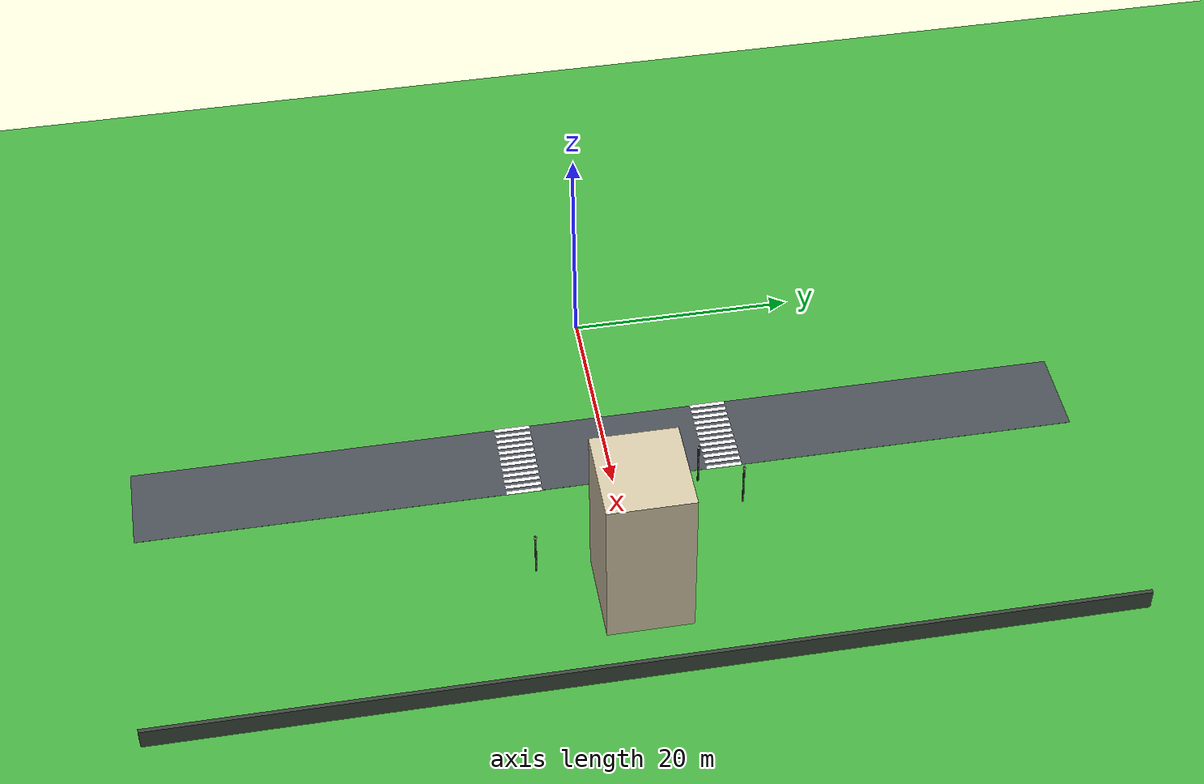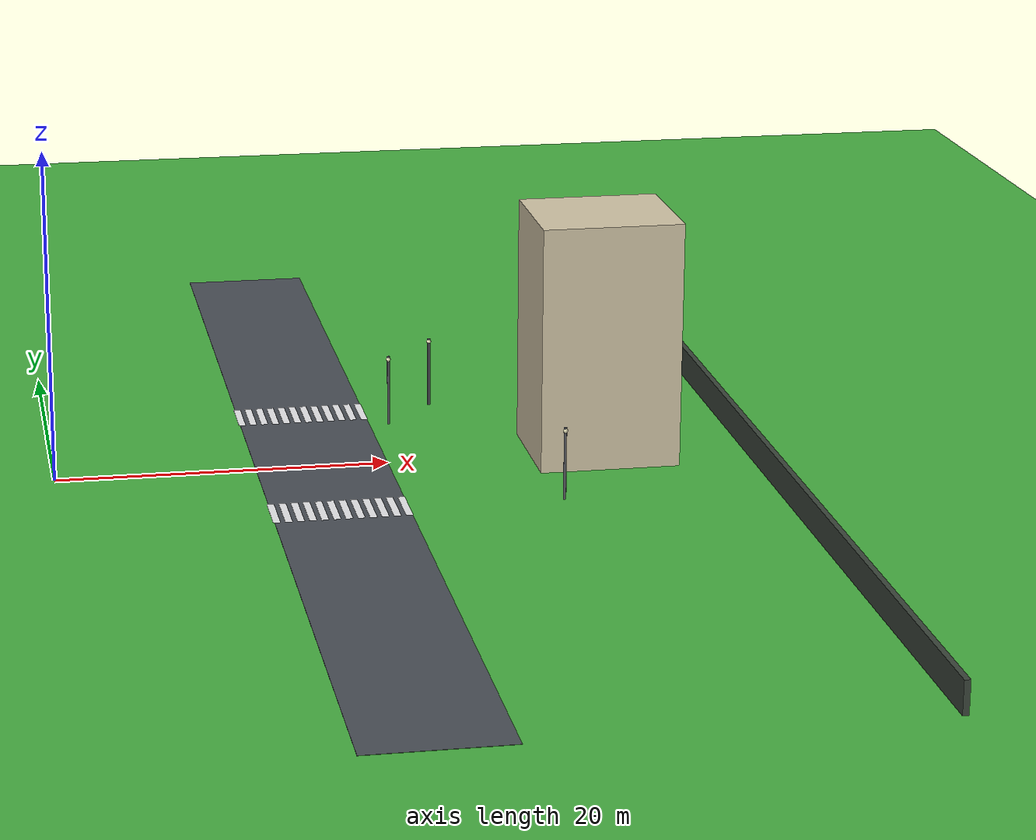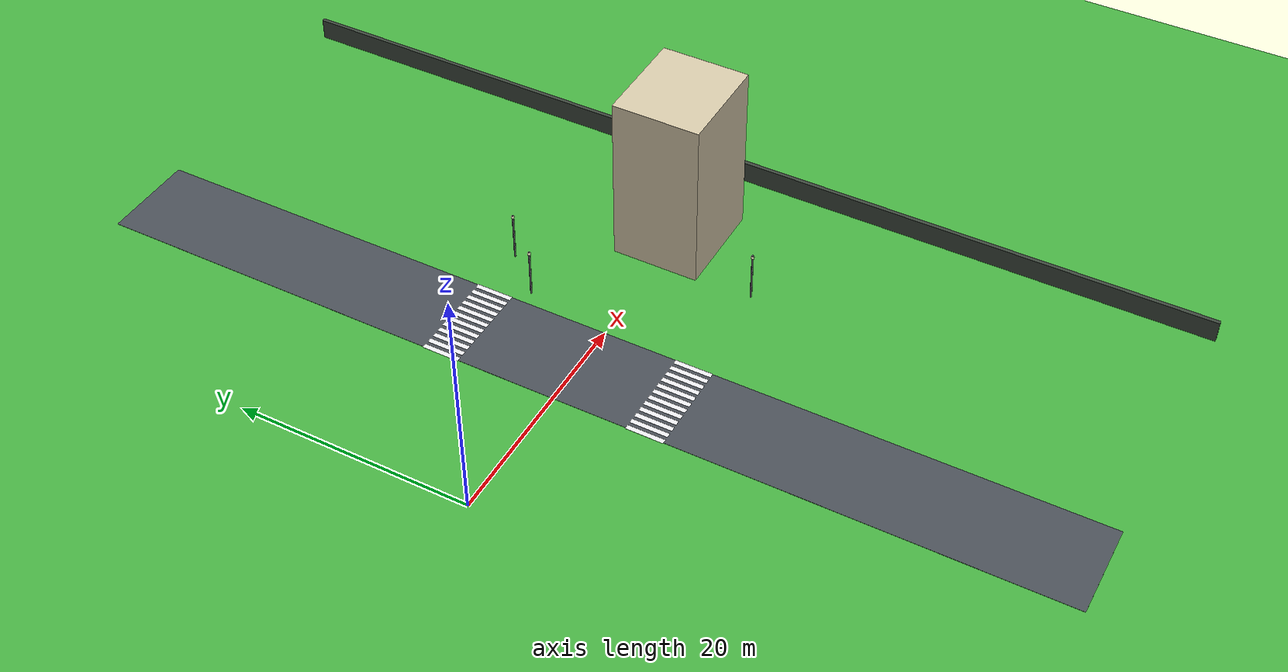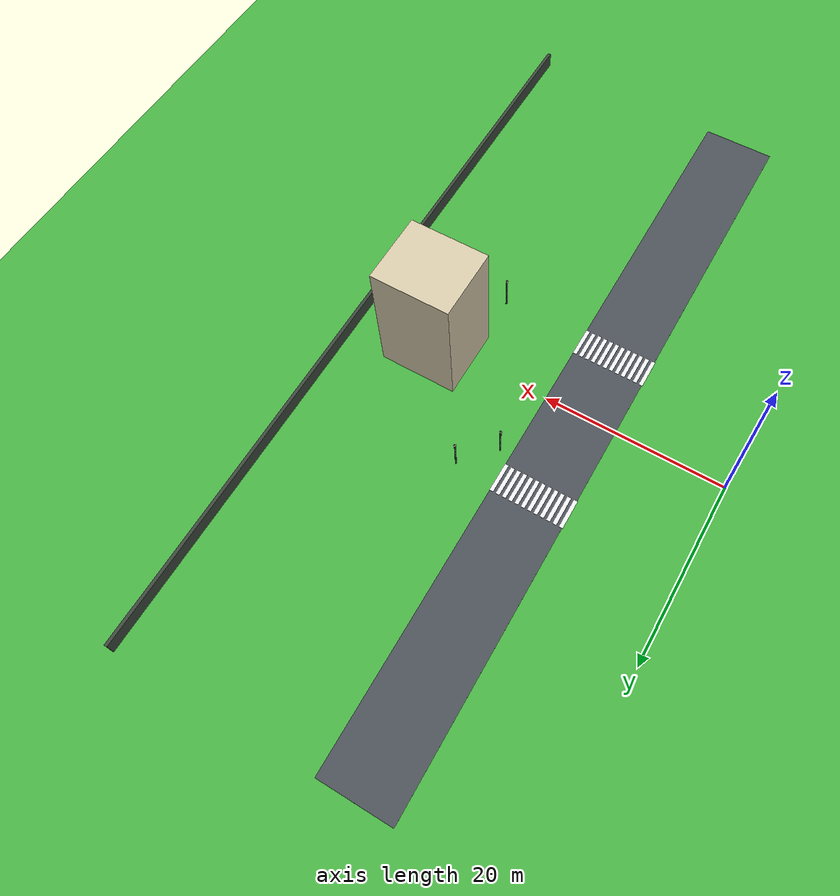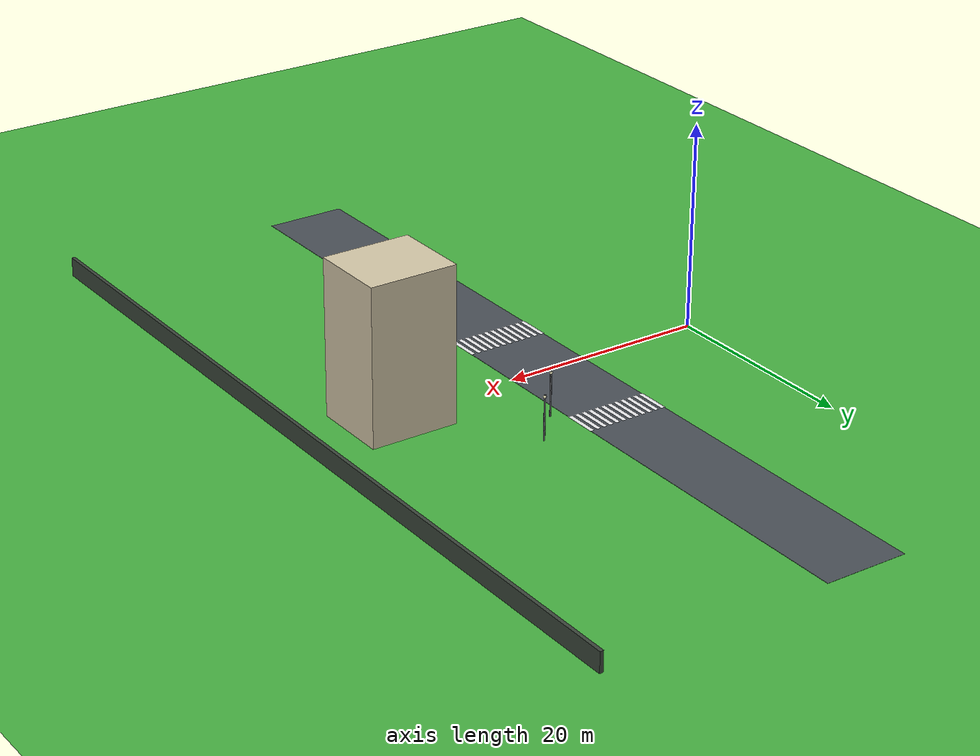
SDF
<sdf version="1.10">
 <world name="city_second">
  <model name="ground_plane">
   <static>true</static>
   <link name="link">
    <collision name="collision">
     <geometry><plane><normal>0 0 1</normal><size>300 300</size></plane></geometry>
    </collision>
    <visual name="visual">
     <geometry><plane><normal>0 0 1</normal><size>300 300</size></plane></geometry>
     <material>
      <ambient>0.280000001 0.689999998 0.25999999 1</ambient>
      <diffuse>0.280000001 0.689999998 0.25999999 1</diffuse>
      <specular>0.0299999993 0.0299999993 0.0299999993 1</specular>
     </material>
    </visual>
    <inertial>
     <mass>1</mass>
     <inertia><ixx>1</ixx><ixy>0</ixy><ixz>0</ixz><iyy>1</iyy><iyz>0</iyz><izz>1</izz></inertia>
    </inertial>
   </link>
  </model>
  <model name="road_v_2">
   <static>true</static>
   <pose>16 0 0.01 0 0 0</pose>
   <link name="link">
    <collision name="collision"><geometry><box><size>8 84 0.02</size></box></geometry></collision>
    <visual name="visual">
     <geometry><box><size>8 84 0.02</size></box></geometry>
     <material>
      <ambient>0.289999992 0.310000002 0.340000004 1</ambient>
      <diffuse>0.289999992 0.310000002 0.340000004 1</diffuse>
      <specular>0.0299999993 0.0299999993 0.0299999993 1</specular>
     </material>
    </visual>
    <inertial>
     <mass>1</mass>
     <inertia><ixx>1</ixx><ixy>0</ixy><ixz>0</ixz><iyy>1</iyy><iyz>0</iyz><izz>1</izz></inertia>
    </inertial>
   </link>
  </model>
  <model name="fence_east">
   <static>true</static>
   <pose>42 0 0.94999999999999996 0 0 0</pose>
   <link name="link">
    <collision name="collision">
     <geometry><box><size>0.34999999999999998 84.5 1.8999999999999999</size></box></geometry>
    </collision>
    <visual name="visual">
     <geometry><box><size>0.34999999999999998 84.5 1.8999999999999999</size></box></geometry>
     <material>
      <ambient>0.230000004 0.270000011 0.230000004 1</ambient>
      <diffuse>0.230000004 0.270000011 0.230000004 1</diffuse>
      <specular>0.0299999993 0.0299999993 0.0299999993 1</specular>
     </material>
    </visual>
    <inertial>
     <mass>1</mass>
     <inertia><ixx>1</ixx><ixy>0</ixy><ixz>0</ixz><iyy>1</iyy><iyz>0</iyz><izz>1</izz></inertia>
    </inertial>
   </link>
  </model>
  <model name="crosswalk_h_1_1_south_6">
   <static>true</static>
   <pose>15.980700000000001 10.0922 0.017000000000000001 0 0 0</pose>
   <link name="stripe_1">
    <collision name="collision">
     <geometry><box><size>0.41999999999999998 3.2000000000000002 0.01</size></box></geometry>
    </collision>
    <visual name="visual">
     <geometry><box><size>0.41999999999999998 3.2000000000000002 0.01</size></box></geometry>
     <material>
      <ambient>0.920000017 0.920000017 0.930000007 1</ambient>
      <diffuse>0.920000017 0.920000017 0.930000007 1</diffuse>
      <specular>0.0299999993 0.0299999993 0.0299999993 1</specular>
     </material>
    </visual>
    <pose>-3.8500000000000001 0 0 0 0 0</pose>
    <inertial>
     <mass>1</mass>
     <inertia><ixx>1</ixx><ixy>0</ixy><ixz>0</ixz><iyy>1</iyy><iyz>0</iyz><izz>1</izz></inertia>
    </inertial>
   </link>
   <link name="stripe_2">
    <collision name="collision">
     <geometry><box><size>0.41999999999999998 3.2000000000000002 0.01</size></box></geometry>
    </collision>
    <visual name="visual">
     <geometry><box><size>0.41999999999999998 3.2000000000000002 0.01</size></box></geometry>
     <material>
      <ambient>0.920000017 0.920000017 0.930000007 1</ambient>
      <diffuse>0.920000017 0.920000017 0.930000007 1</diffuse>
      <specular>0.0299999993 0.0299999993 0.0299999993 1</specular>
     </material>
    </visual>
    <pose>-3.1499999999999999 0 0 0 0 0</pose>
    <inertial>
     <mass>1</mass>
     <inertia><ixx>1</ixx><ixy>0</ixy><ixz>0</ixz><iyy>1</iyy><iyz>0</iyz><izz>1</izz></inertia>
    </inertial>
   </link>
   <link name="stripe_3">
    <collision name="collision">
     <geometry><box><size>0.41999999999999998 3.2000000000000002 0.01</size></box></geometry>
    </collision>
    <visual name="visual">
     <geometry><box><size>0.41999999999999998 3.2000000000000002 0.01</size></box></geometry>
     <material>
      <ambient>0.920000017 0.920000017 0.930000007 1</ambient>
      <diffuse>0.920000017 0.920000017 0.930000007 1</diffuse>
      <specular>0.0299999993 0.0299999993 0.0299999993 1</specular>
     </material>
    </visual>
    <pose>-2.4500000000000002 0 0 0 0 0</pose>
    <inertial>
     <mass>1</mass>
     <inertia><ixx>1</ixx><ixy>0</ixy><ixz>0</ixz><iyy>1</iyy><iyz>0</iyz><izz>1</izz></inertia>
    </inertial>
   </link>
   <link name="stripe_4">
    <collision name="collision">
     <geometry><box><size>0.41999999999999998 3.2000000000000002 0.01</size></box></geometry>
    </collision>
    <visual name="visual">
     <geometry><box><size>0.41999999999999998 3.2000000000000002 0.01</size></box></geometry>
     <material>
      <ambient>0.920000017 0.920000017 0.930000007 1</ambient>
      <diffuse>0.920000017 0.920000017 0.930000007 1</diffuse>
      <specular>0.0299999993 0.0299999993 0.0299999993 1</specular>
     </material>
    </visual>
    <pose>-1.75 0 0 0 0 0</pose>
    <inertial>
     <mass>1</mass>
     <inertia><ixx>1</ixx><ixy>0</ixy><ixz>0</ixz><iyy>1</iyy><iyz>0</iyz><izz>1</izz></inertia>
    </inertial>
   </link>
   <link name="stripe_5">
    <collision name="collision">
     <geometry><box><size>0.41999999999999998 3.2000000000000002 0.01</size></box></geometry>
    </collision>
    <visual name="visual">
     <geometry><box><size>0.41999999999999998 3.2000000000000002 0.01</size></box></geometry>
     <material>
      <ambient>0.920000017 0.920000017 0.930000007 1</ambient>
      <diffuse>0.920000017 0.920000017 0.930000007 1</diffuse>
      <specular>0.0299999993 0.0299999993 0.0299999993 1</specular>
     </material>
    </visual>
    <pose>-1.05 0 0 0 0 0</pose>
    <inertial>
     <mass>1</mass>
     <inertia><ixx>1</ixx><ixy>0</ixy><ixz>0</ixz><iyy>1</iyy><iyz>0</iyz><izz>1</izz></inertia>
    </inertial>
   </link>
   <link name="stripe_6">
    <collision name="collision">
     <geometry><box><size>0.41999999999999998 3.2000000000000002 0.01</size></box></geometry>
    </collision>
    <visual name="visual">
     <geometry><box><size>0.41999999999999998 3.2000000000000002 0.01</size></box></geometry>
     <material>
      <ambient>0.920000017 0.920000017 0.930000007 1</ambient>
      <diffuse>0.920000017 0.920000017 0.930000007 1</diffuse>
      <specular>0.0299999993 0.0299999993 0.0299999993 1</specular>
     </material>
    </visual>
    <pose>-0.34999999999999998 0 0 0 0 0</pose>
    <inertial>
     <mass>1</mass>
     <inertia><ixx>1</ixx><ixy>0</ixy><ixz>0</ixz><iyy>1</iyy><iyz>0</iyz><izz>1</izz></inertia>
    </inertial>
   </link>
   <link name="stripe_7">
    <collision name="collision">
     <geometry><box><size>0.41999999999999998 3.2000000000000002 0.01</size></box></geometry>
    </collision>
    <visual name="visual">
     <geometry><box><size>0.41999999999999998 3.2000000000000002 0.01</size></box></geometry>
     <material>
      <ambient>0.920000017 0.920000017 0.930000007 1</ambient>
      <diffuse>0.920000017 0.920000017 0.930000007 1</diffuse>
      <specular>0.0299999993 0.0299999993 0.0299999993 1</specular>
     </material>
    </visual>
    <pose>0.34999999999999998 0 0 0 0 0</pose>
    <inertial>
     <mass>1</mass>
     <inertia><ixx>1</ixx><ixy>0</ixy><ixz>0</ixz><iyy>1</iyy><iyz>0</iyz><izz>1</izz></inertia>
    </inertial>
   </link>
   <link name="stripe_8">
    <collision name="collision">
     <geometry><box><size>0.41999999999999998 3.2000000000000002 0.01</size></box></geometry>
    </collision>
    <visual name="visual">
     <geometry><box><size>0.41999999999999998 3.2000000000000002 0.01</size></box></geometry>
     <material>
      <ambient>0.920000017 0.920000017 0.930000007 1</ambient>
      <diffuse>0.920000017 0.920000017 0.930000007 1</diffuse>
      <specular>0.0299999993 0.0299999993 0.0299999993 1</specular>
     </material>
    </visual>
    <pose>1.05 0 0 0 0 0</pose>
    <inertial>
     <mass>1</mass>
     <inertia><ixx>1</ixx><ixy>0</ixy><ixz>0</ixz><iyy>1</iyy><iyz>0</iyz><izz>1</izz></inertia>
    </inertial>
   </link>
   <link name="stripe_9">
    <collision name="collision">
     <geometry><box><size>0.41999999999999998 3.2000000000000002 0.01</size></box></geometry>
    </collision>
    <visual name="visual">
     <geometry><box><size>0.41999999999999998 3.2000000000000002 0.01</size></box></geometry>
     <material>
      <ambient>0.920000017 0.920000017 0.930000007 1</ambient>
      <diffuse>0.920000017 0.920000017 0.930000007 1</diffuse>
      <specular>0.0299999993 0.0299999993 0.0299999993 1</specular>
     </material>
    </visual>
    <pose>1.75 0 0 0 0 0</pose>
    <inertial>
     <mass>1</mass>
     <inertia><ixx>1</ixx><ixy>0</ixy><ixz>0</ixz><iyy>1</iyy><iyz>0</iyz><izz>1</izz></inertia>
    </inertial>
   </link>
   <link name="stripe_10">
    <collision name="collision">
     <geometry><box><size>0.41999999999999998 3.2000000000000002 0.01</size></box></geometry>
    </collision>
    <visual name="visual">
     <geometry><box><size>0.41999999999999998 3.2000000000000002 0.01</size></box></geometry>
     <material>
      <ambient>0.920000017 0.920000017 0.930000007 1</ambient>
      <diffuse>0.920000017 0.920000017 0.930000007 1</diffuse>
      <specular>0.0299999993 0.0299999993 0.0299999993 1</specular>
     </material>
    </visual>
    <pose>2.4500000000000002 0 0 0 0 0</pose>
    <inertial>
     <mass>1</mass>
     <inertia><ixx>1</ixx><ixy>0</ixy><ixz>0</ixz><iyy>1</iyy><iyz>0</iyz><izz>1</izz></inertia>
    </inertial>
   </link>
   <link name="stripe_11">
    <collision name="collision">
     <geometry><box><size>0.41999999999999998 3.2000000000000002 0.01</size></box></geometry>
    </collision>
    <visual name="visual">
     <geometry><box><size>0.41999999999999998 3.2000000000000002 0.01</size></box></geometry>
     <material>
      <ambient>0.920000017 0.920000017 0.930000007 1</ambient>
      <diffuse>0.920000017 0.920000017 0.930000007 1</diffuse>
      <specular>0.0299999993 0.0299999993 0.0299999993 1</specular>
     </material>
    </visual>
    <pose>3.1499999999999999 0 0 0 0 0</pose>
    <inertial>
     <mass>1</mass>
     <inertia><ixx>1</ixx><ixy>0</ixy><ixz>0</ixz><iyy>1</iyy><iyz>0</iyz><izz>1</izz></inertia>
    </inertial>
   </link>
   <link name="stripe_12">
    <collision name="collision">
     <geometry><box><size>0.41999999999999998 3.2000000000000002 0.01</size></box></geometry>
    </collision>
    <visual name="visual">
     <geometry><box><size>0.41999999999999998 3.2000000000000002 0.01</size></box></geometry>
     <material>
      <ambient>0.920000017 0.920000017 0.930000007 1</ambient>
      <diffuse>0.920000017 0.920000017 0.930000007 1</diffuse>
      <specular>0.0299999993 0.0299999993 0.0299999993 1</specular>
     </material>
    </visual>
    <pose>3.8500000000000001 0 0 0 0 0</pose>
    <inertial>
     <mass>1</mass>
     <inertia><ixx>1</ixx><ixy>0</ixy><ixz>0</ixz><iyy>1</iyy><iyz>0</iyz><izz>1</izz></inertia>
    </inertial>
   </link>
  </model>
  <model name="house_2_3_1">
   <static>true</static>
   <pose>32.993699999999997 0.30851699999999999 7.5 0 0 0</pose>
   <link name="link">
    <collision name="collision"><geometry><box><size>8.5 7.5 15</size></box></geometry></collision>
    <visual name="visual">
     <geometry><box><size>8.5 7.5 15</size></box></geometry>
     <material>
      <ambient>0.829999983 0.779999971 0.660000026 1</ambient>
      <diffuse>0.829999983 0.779999971 0.660000026 1</diffuse>
      <specular>0.0299999993 0.0299999993 0.0299999993 1</specular>
     </material>
    </visual>
    <inertial>
     <mass>1</mass>
     <inertia><ixx>1</ixx><ixy>0</ixy><ixz>0</ixz><iyy>1</iyy><iyz>0</iyz><izz>1</izz></inertia>
    </inertial>
   </link>
  </model>
  <model name="crosswalk_h_1_1_south_7_1">
   <static>true</static>
   <pose>15.9758 -7.8596300000000001 0.017000000000000001 0 0 0</pose>
   <link name="stripe_1">
    <collision name="collision">
     <geometry><box><size>0.41999999999999998 3.2000000000000002 0.01</size></box></geometry>
    </collision>
    <visual name="visual">
     <geometry><box><size>0.41999999999999998 3.2000000000000002 0.01</size></box></geometry>
     <material>
      <ambient>0.920000017 0.920000017 0.930000007 1</ambient>
      <diffuse>0.920000017 0.920000017 0.930000007 1</diffuse>
      <specular>0.0299999993 0.0299999993 0.0299999993 1</specular>
     </material>
    </visual>
    <pose>-3.8500000000000001 0 0 0 0 0</pose>
    <inertial>
     <mass>1</mass>
     <inertia><ixx>1</ixx><ixy>0</ixy><ixz>0</ixz><iyy>1</iyy><iyz>0</iyz><izz>1</izz></inertia>
    </inertial>
   </link>
   <link name="stripe_2">
    <collision name="collision">
     <geometry><box><size>0.41999999999999998 3.2000000000000002 0.01</size></box></geometry>
    </collision>
    <visual name="visual">
     <geometry><box><size>0.41999999999999998 3.2000000000000002 0.01</size></box></geometry>
     <material>
      <ambient>0.920000017 0.920000017 0.930000007 1</ambient>
      <diffuse>0.920000017 0.920000017 0.930000007 1</diffuse>
      <specular>0.0299999993 0.0299999993 0.0299999993 1</specular>
     </material>
    </visual>
    <pose>-3.1499999999999999 0 0 0 0 0</pose>
    <inertial>
     <mass>1</mass>
     <inertia><ixx>1</ixx><ixy>0</ixy><ixz>0</ixz><iyy>1</iyy><iyz>0</iyz><izz>1</izz></inertia>
    </inertial>
   </link>
   <link name="stripe_3">
    <collision name="collision">
     <geometry><box><size>0.41999999999999998 3.2000000000000002 0.01</size></box></geometry>
    </collision>
    <visual name="visual">
     <geometry><box><size>0.41999999999999998 3.2000000000000002 0.01</size></box></geometry>
     <material>
      <ambient>0.920000017 0.920000017 0.930000007 1</ambient>
      <diffuse>0.920000017 0.920000017 0.930000007 1</diffuse>
      <specular>0.0299999993 0.0299999993 0.0299999993 1</specular>
     </material>
    </visual>
    <pose>-2.4500000000000002 0 0 0 0 0</pose>
    <inertial>
     <mass>1</mass>
     <inertia><ixx>1</ixx><ixy>0</ixy><ixz>0</ixz><iyy>1</iyy><iyz>0</iyz><izz>1</izz></inertia>
    </inertial>
   </link>
   <link name="stripe_4">
    <collision name="collision">
     <geometry><box><size>0.41999999999999998 3.2000000000000002 0.01</size></box></geometry>
    </collision>
    <visual name="visual">
     <geometry><box><size>0.41999999999999998 3.2000000000000002 0.01</size></box></geometry>
     <material>
      <ambient>0.920000017 0.920000017 0.930000007 1</ambient>
      <diffuse>0.920000017 0.920000017 0.930000007 1</diffuse>
      <specular>0.0299999993 0.0299999993 0.0299999993 1</specular>
     </material>
    </visual>
    <pose>-1.75 0 0 0 0 0</pose>
    <inertial>
     <mass>1</mass>
     <inertia><ixx>1</ixx><ixy>0</ixy><ixz>0</ixz><iyy>1</iyy><iyz>0</iyz><izz>1</izz></inertia>
    </inertial>
   </link>
   <link name="stripe_5">
    <collision name="collision">
     <geometry><box><size>0.41999999999999998 3.2000000000000002 0.01</size></box></geometry>
    </collision>
    <visual name="visual">
     <geometry><box><size>0.41999999999999998 3.2000000000000002 0.01</size></box></geometry>
     <material>
      <ambient>0.920000017 0.920000017 0.930000007 1</ambient>
      <diffuse>0.920000017 0.920000017 0.930000007 1</diffuse>
      <specular>0.0299999993 0.0299999993 0.0299999993 1</specular>
     </material>
    </visual>
    <pose>-1.05 0 0 0 0 0</pose>
    <inertial>
     <mass>1</mass>
     <inertia><ixx>1</ixx><ixy>0</ixy><ixz>0</ixz><iyy>1</iyy><iyz>0</iyz><izz>1</izz></inertia>
    </inertial>
   </link>
   <link name="stripe_6">
    <collision name="collision">
     <geometry><box><size>0.41999999999999998 3.2000000000000002 0.01</size></box></geometry>
    </collision>
    <visual name="visual">
     <geometry><box><size>0.41999999999999998 3.2000000000000002 0.01</size></box></geometry>
     <material>
      <ambient>0.920000017 0.920000017 0.930000007 1</ambient>
      <diffuse>0.920000017 0.920000017 0.930000007 1</diffuse>
      <specular>0.0299999993 0.0299999993 0.0299999993 1</specular>
     </material>
    </visual>
    <pose>-0.34999999999999998 0 0 0 0 0</pose>
    <inertial>
     <mass>1</mass>
     <inertia><ixx>1</ixx><ixy>0</ixy><ixz>0</ixz><iyy>1</iyy><iyz>0</iyz><izz>1</izz></inertia>
    </inertial>
   </link>
   <link name="stripe_7">
    <collision name="collision">
     <geometry><box><size>0.41999999999999998 3.2000000000000002 0.01</size></box></geometry>
    </collision>
    <visual name="visual">
     <geometry><box><size>0.41999999999999998 3.2000000000000002 0.01</size></box></geometry>
     <material>
      <ambient>0.920000017 0.920000017 0.930000007 1</ambient>
      <diffuse>0.920000017 0.920000017 0.930000007 1</diffuse>
      <specular>0.0299999993 0.0299999993 0.0299999993 1</specular>
     </material>
    </visual>
    <pose>0.34999999999999998 0 0 0 0 0</pose>
    <inertial>
     <mass>1</mass>
     <inertia><ixx>1</ixx><ixy>0</ixy><ixz>0</ixz><iyy>1</iyy><iyz>0</iyz><izz>1</izz></inertia>
    </inertial>
   </link>
   <link name="stripe_8">
    <collision name="collision">
     <geometry><box><size>0.41999999999999998 3.2000000000000002 0.01</size></box></geometry>
    </collision>
    <visual name="visual">
     <geometry><box><size>0.41999999999999998 3.2000000000000002 0.01</size></box></geometry>
     <material>
      <ambient>0.920000017 0.920000017 0.930000007 1</ambient>
      <diffuse>0.920000017 0.920000017 0.930000007 1</diffuse>
      <specular>0.0299999993 0.0299999993 0.0299999993 1</specular>
     </material>
    </visual>
    <pose>1.05 0 0 0 0 0</pose>
    <inertial>
     <mass>1</mass>
     <inertia><ixx>1</ixx><ixy>0</ixy><ixz>0</ixz><iyy>1</iyy><iyz>0</iyz><izz>1</izz></inertia>
    </inertial>
   </link>
   <link name="stripe_9">
    <collision name="collision">
     <geometry><box><size>0.41999999999999998 3.2000000000000002 0.01</size></box></geometry>
    </collision>
    <visual name="visual">
     <geometry><box><size>0.41999999999999998 3.2000000000000002 0.01</size></box></geometry>
     <material>
      <ambient>0.920000017 0.920000017 0.930000007 1</ambient>
      <diffuse>0.920000017 0.920000017 0.930000007 1</diffuse>
      <specular>0.0299999993 0.0299999993 0.0299999993 1</specular>
     </material>
    </visual>
    <pose>1.75 0 0 0 0 0</pose>
    <inertial>
     <mass>1</mass>
     <inertia><ixx>1</ixx><ixy>0</ixy><ixz>0</ixz><iyy>1</iyy><iyz>0</iyz><izz>1</izz></inertia>
    </inertial>
   </link>
   <link name="stripe_10">
    <collision name="collision">
     <geometry><box><size>0.41999999999999998 3.2000000000000002 0.01</size></box></geometry>
    </collision>
    <visual name="visual">
     <geometry><box><size>0.41999999999999998 3.2000000000000002 0.01</size></box></geometry>
     <material>
      <ambient>0.920000017 0.920000017 0.930000007 1</ambient>
      <diffuse>0.920000017 0.920000017 0.930000007 1</diffuse>
      <specular>0.0299999993 0.0299999993 0.0299999993 1</specular>
     </material>
    </visual>
    <pose>2.4500000000000002 0 0 0 0 0</pose>
    <inertial>
     <mass>1</mass>
     <inertia><ixx>1</ixx><ixy>0</ixy><ixz>0</ixz><iyy>1</iyy><iyz>0</iyz><izz>1</izz></inertia>
    </inertial>
   </link>
   <link name="stripe_11">
    <collision name="collision">
     <geometry><box><size>0.41999999999999998 3.2000000000000002 0.01</size></box></geometry>
    </collision>
    <visual name="visual">
     <geometry><box><size>0.41999999999999998 3.2000000000000002 0.01</size></box></geometry>
     <material>
      <ambient>0.920000017 0.920000017 0.930000007 1</ambient>
      <diffuse>0.920000017 0.920000017 0.930000007 1</diffuse>
      <specular>0.0299999993 0.0299999993 0.0299999993 1</specular>
     </material>
    </visual>
    <pose>3.1499999999999999 0 0 0 0 0</pose>
    <inertial>
     <mass>1</mass>
     <inertia><ixx>1</ixx><ixy>0</ixy><ixz>0</ixz><iyy>1</iyy><iyz>0</iyz><izz>1</izz></inertia>
    </inertial>
   </link>
   <link name="stripe_12">
    <collision name="collision">
     <geometry><box><size>0.41999999999999998 3.2000000000000002 0.01</size></box></geometry>
    </collision>
    <visual name="visual">
     <geometry><box><size>0.41999999999999998 3.2000000000000002 0.01</size></box></geometry>
     <material>
      <ambient>0.920000017 0.920000017 0.930000007 1</ambient>
      <diffuse>0.920000017 0.920000017 0.930000007 1</diffuse>
      <specular>0.0299999993 0.0299999993 0.0299999993 1</specular>
     </material>
    </visual>
    <pose>3.8500000000000001 0 0 0 0 0</pose>
    <inertial>
     <mass>1</mass>
     <inertia><ixx>1</ixx><ixy>0</ixy><ixz>0</ixz><iyy>1</iyy><iyz>0</iyz><izz>1</izz></inertia>
    </inertial>
   </link>
  </model>
  <model name="lamp_1_2_7">
   <static>true</static>
   <pose>29.188400000000001 -8.1782299999999992 2.2000000000000002 0 0 0</pose>
   <link name="link">
    <collision name="collision">
     <geometry>
      <cylinder><radius>0.080000000000000002</radius><length>4.4000000000000004</length></cylinder>
     </geometry>
    </collision>
    <visual name="pole">
     <geometry>
      <cylinder><radius>0.080000000000000002</radius><length>4.4000000000000004</length></cylinder>
     </geometry>
     <material>
      <ambient>0.349999994 0.360000014 0.379999995 1</ambient>
      <diffuse>0.349999994 0.360000014 0.379999995 1</diffuse>
      <specular>0.0299999993 0.0299999993 0.0299999993 1</specular>
     </material>
    </visual>
    <visual name="lamp_head">
     <pose>0 0 2 0 0 0</pose>
     <geometry><sphere><radius>0.14000000000000001</radius></sphere></geometry>
     <material>
      <ambient>0.959999979 0.939999998 0.779999971 1</ambient>
      <diffuse>0.959999979 0.939999998 0.779999971 1</diffuse>
      <specular>0.0299999993 0.0299999993 0.0299999993 1</specular>
     </material>
    </visual>
    <inertial>
     <mass>1</mass>
     <inertia><ixx>1</ixx><ixy>0</ixy><ixz>0</ixz><iyy>1</iyy><iyz>0</iyz><izz>1</izz></inertia>
    </inertial>
   </link>
  </model>
  <model name="lamp_1_2_12">
   <static>true</static>
   <pose>24.347899999999999 10.8561 2.2000000000000002 0 0 0</pose>
   <link name="link">
    <collision name="collision">
     <geometry>
      <cylinder><radius>0.080000000000000002</radius><length>4.4000000000000004</length></cylinder>
     </geometry>
    </collision>
    <visual name="pole">
     <geometry>
      <cylinder><radius>0.080000000000000002</radius><length>4.4000000000000004</length></cylinder>
     </geometry>
     <material>
      <ambient>0.349999994 0.360000014 0.379999995 1</ambient>
      <diffuse>0.349999994 0.360000014 0.379999995 1</diffuse>
      <specular>0.0299999993 0.0299999993 0.0299999993 1</specular>
     </material>
    </visual>
    <visual name="lamp_head">
     <pose>0 0 2 0 0 0</pose>
     <geometry><sphere><radius>0.14000000000000001</radius></sphere></geometry>
     <material>
      <ambient>0.959999979 0.939999998 0.779999971 1</ambient>
      <diffuse>0.959999979 0.939999998 0.779999971 1</diffuse>
      <specular>0.0299999993 0.0299999993 0.0299999993 1</specular>
     </material>
    </visual>
    <inertial>
     <mass>1</mass>
     <inertia><ixx>1</ixx><ixy>0</ixy><ixz>0</ixz><iyy>1</iyy><iyz>0</iyz><izz>1</izz></inertia>
    </inertial>
   </link>
  </model>
  <model name="lamp_1_2_13">
   <static>true</static>
   <pose>21.219799999999999 7.4495699999999996 2.2000000000000002 0 0 0</pose>
   <link name="link">
    <collision name="collision">
     <geometry>
      <cylinder><radius>0.080000000000000002</radius><length>4.4000000000000004</length></cylinder>
     </geometry>
    </collision>
    <visual name="pole">
     <geometry>
      <cylinder><radius>0.080000000000000002</radius><length>4.4000000000000004</length></cylinder>
     </geometry>
     <material>
      <ambient>0.349999994 0.360000014 0.379999995 1</ambient>
      <diffuse>0.349999994 0.360000014 0.379999995 1</diffuse>
      <specular>0.0299999993 0.0299999993 0.0299999993 1</specular>
     </material>
    </visual>
    <visual name="lamp_head">
     <pose>0 0 2 0 0 0</pose>
     <geometry><sphere><radius>0.14000000000000001</radius></sphere></geometry>
     <material>
      <ambient>0.959999979 0.939999998 0.779999971 1</ambient>
      <diffuse>0.959999979 0.939999998 0.779999971 1</diffuse>
      <specular>0.0299999993 0.0299999993 0.0299999993 1</specular>
     </material>
    </visual>
    <inertial>
     <mass>1</mass>
     <inertia><ixx>1</ixx><ixy>0</ixy><ixz>0</ixz><iyy>1</iyy><iyz>0</iyz><izz>1</izz></inertia>
    </inertial>
   </link>
  </model>
 </world>
</sdf>
